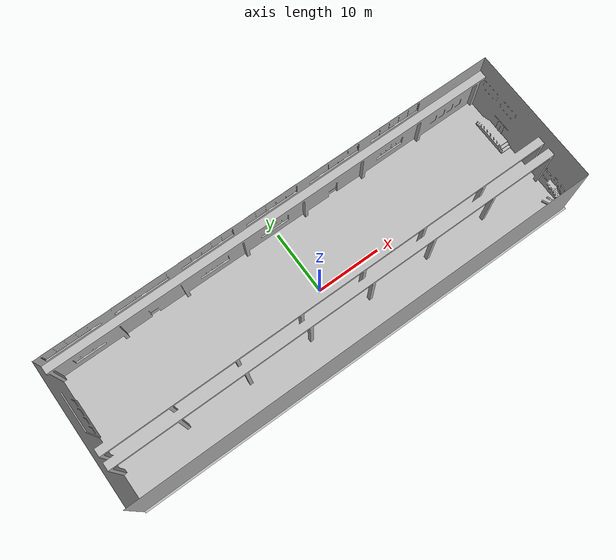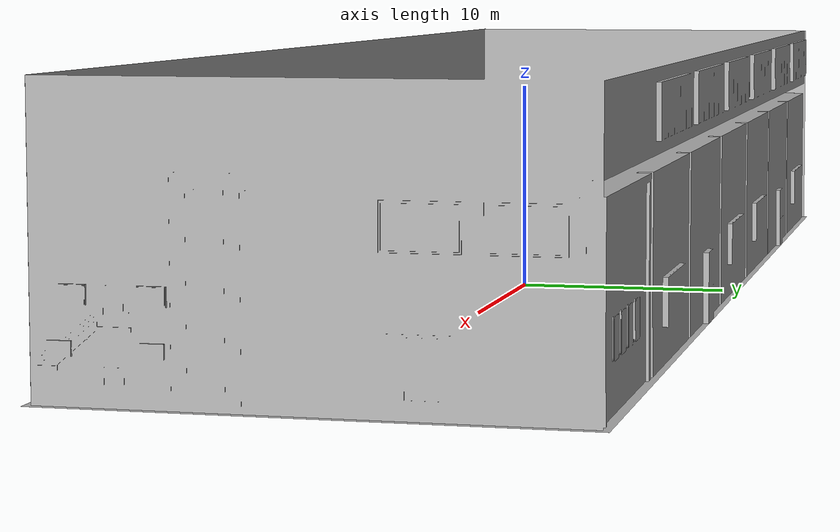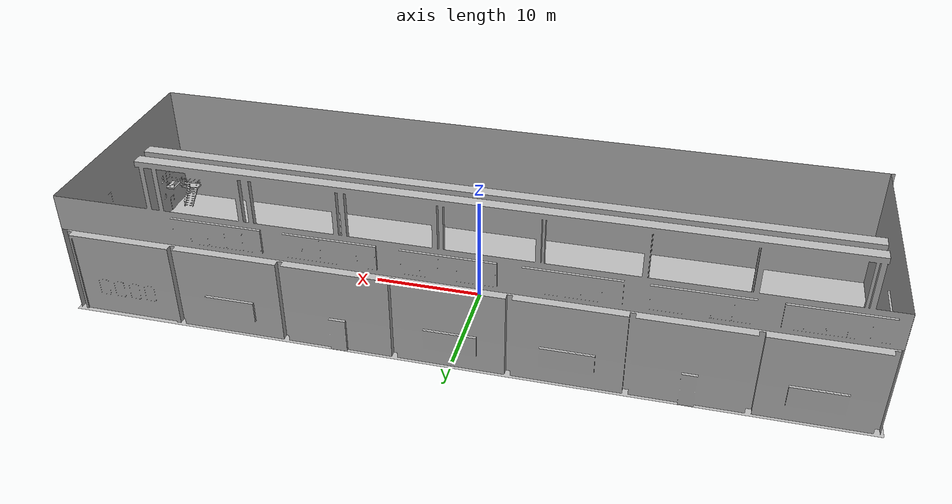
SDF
<?xml version="1.0" ?>
<sdf version="1.6">
  <model name="utimac_manufacturing_wall_01">
    <link name="link">
      <inertial>
        <mass>1000</mass>
        <inertia>
          <ixx>840083.33</ixx>
          <ixy>0</ixy>
          <ixz>0</ixz>
          <iyy>475500.0</iyy>
          <iyz>0</iyz>
          <izz>1302083.33</izz>
        </inertia>
      </inertial>
      <collision name="collision">
        <geometry>
          <mesh>
            <uri>model://utimac_manufacturing_wall_01/meshes/utimac_walls.stl</uri>
            <scale>0.001 0.001 0.001</scale>
          </mesh>
        </geometry>
		<surface>
          <friction>
            <ode>
              <mu>0.5</mu>
              <mu2>0.5</mu2>
              <fdir1>0 0 0</fdir1>
              <slip1>0</slip1>
              <slip2>0</slip2>
            </ode>
        </friction>
          </surface>
      </collision>
      <visual name="visual">
	    <geometry>
          <mesh>
            <uri>model://utimac_manufacturing_wall_01/meshes/Salvatore3rdProyect_Environment_v01.dae</uri>
          </mesh>
        </geometry>
      <meta> <layer> 2 </layer></meta>
</visual>
    </link>
<static>1</static>
  </model>
</sdf>
